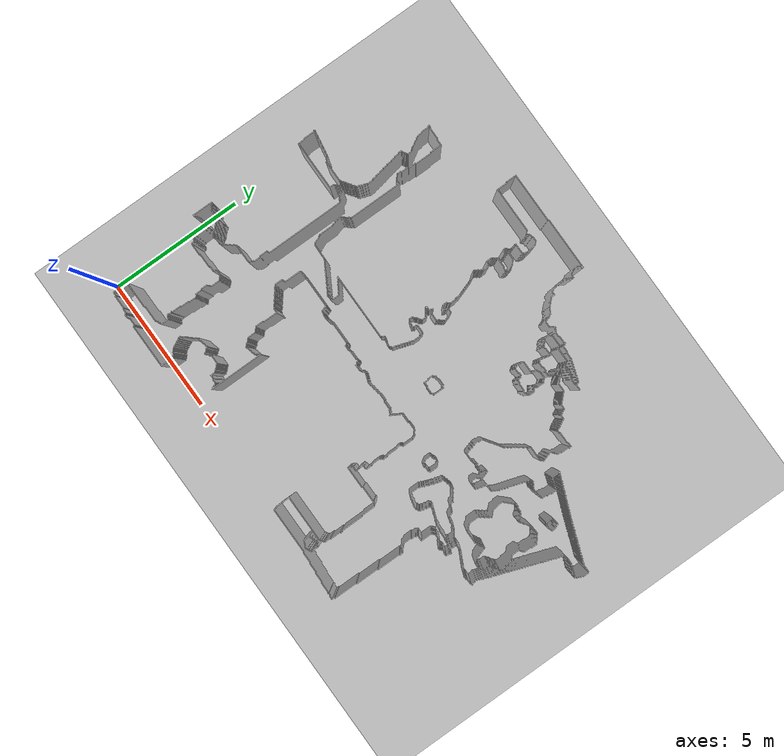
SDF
<?xml version="1.0" ?>
<sdf version="1.4">
  <world name="default">
    <include>
      <uri>model://ground_plane</uri>
    </include>
    <include>
      <uri>model://sun</uri>
    </include>
    <include>
      <uri>model://habitat18</uri>
    </include>
  </world>
</sdf>

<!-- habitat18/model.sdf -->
<sdf version="1.4">
  <model name="habitat18">
    <link name="link">
      <inertial>
        <mass>15</mass>
        <inertia>
          <ixx>0.145833</ixx>
          <ixy>0.0</ixy>
          <ixz>0.0</ixz>
          <iyy>0.145833</iyy>
          <iyz>0.0</iyz>
          <izz>0.0</izz>
        </inertia>
      </inertial>
      <collision name="collision">
        <pose>0 0 0 0 0 0</pose>
        <geometry>
          <mesh>
            <uri>model://habitat18/meshes/habitat18.stl</uri>
          </mesh>
        </geometry>
        <max_contacts>10</max_contacts>
        <surface>
            <contact>
              <ode/>
            </contact>
            <bounce/>
            <friction>
              <torsional>
                <ode/>
              </torsional>
              <ode/>
            </friction>
        </surface>
      </collision>
      <visual name="visual">
        <pose>0 0 0 0 0 0</pose>
        <geometry>
          <mesh>
            <uri>model://habitat18/meshes/habitat18.stl</uri>
          </mesh>
        </geometry>
      </visual>
      <self_collide>0</self_collide>
      <kinematic>0</kinematic>
      <gravity>1</gravity>
    </link>
    <static>1</static>
  </model>
</sdf>
